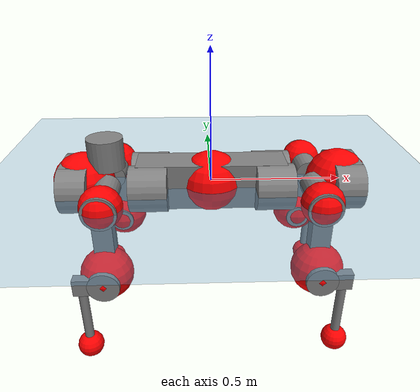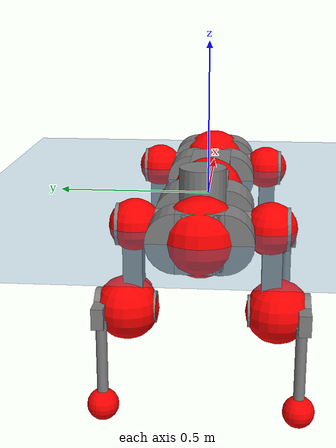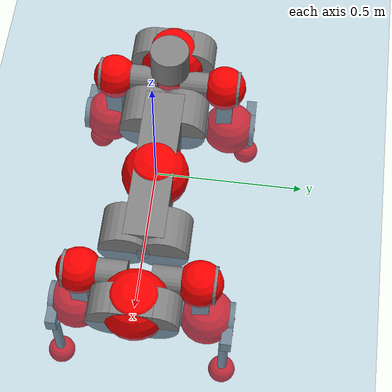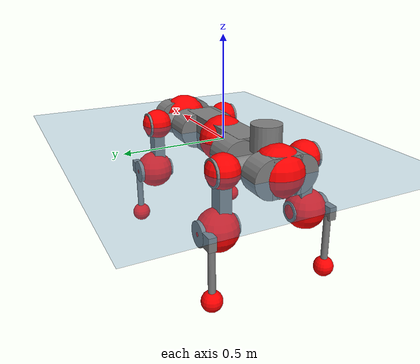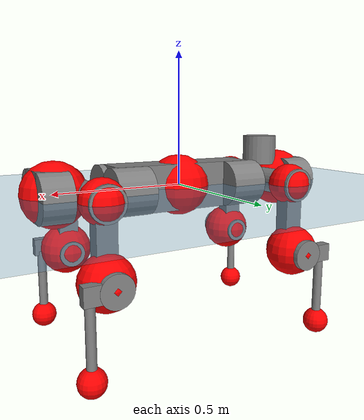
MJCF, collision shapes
<mujoco model="anymal_c">
  <compiler angle="radian" assetdir="assets" balanceinertia="true" inertiafromgeom="false"/>

  <option timestep="0.005" density="1.2" viscosity="2e-05"/>

  <size nkey="1"/>

  <visual>
    <quality shadowsize="8192"/>
    <map shadowclip="0.5"/>
  </visual>

  <default>
    <default class="/">
      <material specular="0" shininess="0.25"/>
      <geom contype="0" conaffinity="0" group="1" solref="-1000 -80"/>
      <site size="0.01 0.005 0.005" group="5"/>
      <general forcelimited="true" forcerange="-80 80" biastype="affine" gainprm="80" biasprm="0 -80 -2"/>
      <default class="anymal_c">
        <joint armature="0.01" damping="0.01" frictionloss="0.1"/>
        <default class="visual">
          <geom type="mesh" group="2"/>
          <default class="visual_zflip"/>
        </default>
        <default class="collision">
          <geom type="cylinder" group="3"/>
          <default class="foot">
            <geom size="0.03 0 0" type="sphere" condim="6" priority="1" friction="0.8 0.02 0.01" solimp="0.015 1 0.03"/>
          </default>
        </default>
      </default>
      <default class="reward_collision_sphere">
        <geom group="5" rgba="1 0 0 1"/>
      </default>
    </default>
  </default>

  <asset>
    <texture type="skybox" colorspace="auto" name="//unnamed_texture_0" builtin="gradient" rgb1="0.95 0.95 0.95" rgb2="0.95 0.95 0.95" width="100" height="600"/>
    <texture type="2d" colorspace="auto" name="texplane" builtin="checker" rgb1="0.345 0.575 0.748" rgb2="0.345 0.575 0.748" markrgb="1 1 1" width="512" height="512"/>
    <texture type="2d" colorspace="linear" name="base" file="base.png"/>
    <texture type="2d" colorspace="linear" name="top_shell" file="top_shell.png"/>
    <texture type="2d" colorspace="linear" name="bottom_shell" file="bottom_shell.png"/>
    <texture type="2d" colorspace="linear" name="remote" file="remote.png"/>
    <texture type="2d" colorspace="linear" name="hatch" file="hatch.png"/>
    <texture type="2d" colorspace="linear" name="handle" file="handle.png"/>
    <texture type="2d" colorspace="linear" name="face" file="face.png"/>
    <texture type="2d" colorspace="linear" name="battery" file="battery.png"/>
    <texture type="2d" colorspace="linear" name="lidar_cage" file="lidar_cage.png"/>
    <texture type="2d" colorspace="linear" name="depth_camera" file="depth_camera.png"/>
    <texture type="2d" colorspace="linear" name="wide_angle_camera" file="wide_angle_camera.png"/>
    <texture type="2d" colorspace="linear" name="lidar" file="lidar.png"/>
    <texture type="2d" colorspace="linear" name="drive" file="drive.png"/>
    <texture type="2d" colorspace="linear" name="hip_l" file="hip_l.png"/>
    <texture type="2d" colorspace="linear" name="shank_l" file="shank_l.png"/>
    <texture type="2d" colorspace="linear" name="foot" file="foot.png"/>
    <texture type="2d" colorspace="linear" name="thigh" file="thigh.png"/>
    <texture type="2d" colorspace="linear" name="shank_r" file="shank_r.png"/>
    <texture type="2d" colorspace="linear" name="hip_r" file="hip_r.png"/>
    <material name="MatPlane" class="/" texture="texplane" texuniform="true" texrepeat="2 2" specular="0.9" shininess="0.5"/>
    <material name="black_plastic" class="/" rgba="0.007 0.007 0.007 1"/>
    <material name="green" class="/" rgba="0.052 0.178 0.033 1"/>
    <material name="red" class="/" rgba="0.178 0.006 0.005 1"/>
    <material name="yellow" class="/" rgba="0.178 0.119 0.006 1"/>
    <material name="lwl" class="/" rgba="0.8 0.8 0.8 1"/>
    <material name="base" class="/" texture="base"/>
    <material name="top_shell" class="/" texture="top_shell"/>
    <material name="bottom_shell" class="/" texture="bottom_shell"/>
    <material name="hip_l" class="/" texture="hip_l"/>
    <material name="thigh" class="/" texture="thigh"/>
    <material name="shank_l" class="/" texture="shank_l"/>
    <material name="foot" class="/" texture="foot"/>
    <material name="hip_r" class="/" texture="hip_r"/>
    <material name="shank" class="/" texture="shank_r"/>
    <material name="hatch" class="/" texture="hatch"/>
    <material name="remote" class="/" texture="remote"/>
    <material name="handle" class="/" texture="handle"/>
    <material name="face" class="/" texture="face"/>
    <material name="depth_camera" class="/" texture="depth_camera"/>
    <material name="wide_angle_camera" class="/" texture="wide_angle_camera"/>
    <material name="battery" class="/" texture="battery"/>
    <material name="lidar_cage" class="/" texture="lidar_cage"/>
    <material name="lidar" class="/" texture="lidar"/>
    <material name="drive" class="/" texture="drive"/>
    <mesh name="base_0" class="/" file="base_0.obj"/>
    <mesh name="base_1" class="/" file="base_1.obj"/>
    <mesh name="base_2" class="/" file="base_2.obj"/>
    <mesh name="base_3" class="/" file="base_3.obj"/>
    <mesh name="base_4" class="/" file="base_4.obj"/>
    <mesh name="base_5" class="/" file="base_5.obj"/>
    <mesh name="top_shell" class="/" file="top_shell.obj"/>
    <mesh name="bottom_shell" class="/" file="bottom_shell.obj"/>
    <mesh name="remote" class="/" file="remote.obj"/>
    <mesh name="handle" class="/" file="handle.obj"/>
    <mesh name="face" class="/" file="face.obj"/>
    <mesh name="wide_angle_camera" class="/" file="wide_angle_camera.obj"/>
    <mesh name="depth_camera" class="/" file="depth_camera.obj"/>
    <mesh name="battery" class="/" file="battery.obj"/>
    <mesh name="lidar_cage" class="/" file="lidar_cage.obj"/>
    <mesh name="lidar" class="/" file="lidar.obj"/>
    <mesh name="drive" class="/" file="drive.obj"/>
    <mesh name="hip_l" class="/" file="hip_l.obj"/>
    <mesh name="thigh" class="/" file="thigh.obj"/>
    <mesh name="shank_l" class="/" file="shank_l.obj"/>
    <mesh name="foot" class="/" file="foot.obj"/>
    <mesh name="hip_r" class="/" file="hip_r.obj"/>
    <mesh name="hatch" class="/" file="hatch.obj"/>
    <mesh name="shank_r" class="/" file="shank_r.obj"/>
  </asset>

  <worldbody>
    <geom name="floor" class="/" size="100 100 0.125" type="plane" group="0" material="MatPlane"/>
    <light name="toplight_shadow" class="/" pos="0 0 5" dir="0.0990148 0.0990148 -0.990148" type="directional" ambient="0.04 0.04 0.04" diffuse="0.55 0.55 0.55" specular="0.12 0.12 0.12"/>
    <light name="toplight_fill" class="/" pos="0 0 5" dir="0.0990148 0.0990148 -0.990148" type="directional" castshadow="false" ambient="0.04 0.04 0.04" diffuse="0.3 0.3 0.3" specular="0.08 0.08 0.08"/>
    <body name="trunk" childclass="anymal_c" pos="0.00248336 -0.000683858 -0.000495961" quat="1 -0.000266525 -0.000429822 6.87058e-05">
      <inertial pos="0.00254279 0.000435481 0.0444953" quat="0.500164 0.500061 0.498967 0.500806" mass="17.4348" diaginertia="0.997128 0.439693 0.133885"/>
      <joint name="//unnamed_joint_0" type="free" armature="0" damping="0" frictionloss="0"/>
      <geom name="//unnamed_geom_1" class="visual" material="green" mesh="base_0"/>
      <geom name="//unnamed_geom_2" class="visual" material="yellow" mesh="base_1"/>
      <geom name="//unnamed_geom_3" class="visual" material="red" mesh="base_2"/>
      <geom name="//unnamed_geom_4" class="visual" material="black_plastic" mesh="base_3"/>
      <geom name="//unnamed_geom_5" class="visual" material="lwl" mesh="base_4"/>
      <geom name="//unnamed_geom_6" class="visual" material="base" mesh="base_5"/>
      <geom name="trunk_1" class="collision" size="0.28181 0.0680232 0.0874584" type="box"/>
      <geom name="trunk_2" class="collision" size="0.0874584 0.0704526" pos="0.235078 0.0648577 0" quat="0.707107 0 0.707107 0"/>
      <geom name="trunk_3" class="collision" size="0.0874584 0.0704526" pos="-0.235078 0.0648577 0" quat="0.707107 0 0.707107 0"/>
      <geom name="trunk_4" class="collision" size="0.0874584 0.0704526" pos="0.235078 -0.0648577 0" quat="0.707107 0 0.707107 0"/>
      <geom name="trunk_5" class="collision" size="0.0874584 0.0704526" pos="-0.235078 -0.0648577 0" quat="0.707107 0 0.707107 0"/>
      <geom name="//unnamed_geom_12" class="visual" material="top_shell" mesh="top_shell"/>
      <geom name="//unnamed_geom_13" class="visual" material="bottom_shell" mesh="bottom_shell"/>
      <geom name="//unnamed_geom_14" class="visual" material="remote" mesh="remote"/>
      <geom name="//unnamed_geom_15" class="visual" material="handle" mesh="handle"/>
      <geom name="//unnamed_geom_16" class="visual" pos="0.447998 0 0" quat="1 0 0 0" material="face" mesh="face"/>
      <geom name="trunk_6" class="collision" size="0.0534468 0.0680232 0.0874584" pos="0.507443 0 0" type="box"/>
      <geom name="//unnamed_geom_18" class="collision" size="0.0874584 0.0534468" pos="0.507443 0.0648577 0" quat="0.707107 0 0.707107 0"/>
      <geom name="//unnamed_geom_19" class="collision" size="0.0874584 0.0534468" pos="0.507443 -0.0648577 0" quat="0.707107 0 0.707107 0"/>
      <geom name="//unnamed_geom_20" class="visual" pos="0.498952 0 -0.0251974" quat="0.965926 0 0.258819 0" material="depth_camera" mesh="depth_camera"/>
      <geom name="//unnamed_geom_21" class="visual" pos="0.554459 0 0.0135916" material="wide_angle_camera" mesh="wide_angle_camera"/>
      <geom name="//unnamed_geom_22" class="visual_zflip" pos="-0.447998 0 0" quat="0 0 0 1" material="face" mesh="face"/>
      <geom name="trunk_7" class="collision" size="0.0534468 0.0680232 0.0874584" pos="-0.507443 0 0" quat="0 0 0 1" type="box"/>
      <geom name="//unnamed_geom_24" class="collision" size="0.0874584 0.0534468" pos="-0.507443 -0.0648577 0" quat="0 -0.707107 0 0.707107"/>
      <geom name="//unnamed_geom_25" class="collision" size="0.0874584 0.0534468" pos="-0.507443 0.0648577 0" quat="0 -0.707107 0 0.707107"/>
      <geom name="//unnamed_geom_26" class="visual" pos="-0.498952 0 -0.0251974" quat="0 -0.258819 0 0.965926" material="depth_camera" mesh="depth_camera"/>
      <geom name="//unnamed_geom_27" class="visual_zflip" pos="-0.554459 0 0.0135916" quat="0 0 0 1" material="wide_angle_camera" mesh="wide_angle_camera"/>
      <geom name="//unnamed_geom_28" class="visual" material="battery" mesh="battery"/>
      <geom name="//unnamed_geom_29" class="visual" pos="0 0.0688115 0.0276892" quat="0.683013 -0.183013 0.183013 0.683013" material="depth_camera" mesh="depth_camera"/>
      <geom name="//unnamed_geom_30" class="visual" pos="0 -0.0688115 0.0276892" quat="0.683013 0.183013 0.183013 -0.683013" material="depth_camera" mesh="depth_camera"/>
      <geom name="//unnamed_geom_31" class="visual" pos="-0.393417 0 0.0667324" quat="1 0 0 0" material="lidar_cage" mesh="lidar_cage"/>
      <geom name="trunk_8" class="collision" size="0.0680232 0.0583056" pos="-0.393417 0 0.121208"/>
      <geom name="//unnamed_geom_33" class="visual" pos="-0.393417 -6.06115e-05 0.129107" quat="0.707107 0 0 -0.707107" material="lidar" mesh="lidar"/>
      <geom name="//unnamed_geom_34" class="visual" pos="0.324137 0.0963534 3.21099e-10" quat="0.258819 0.965926 0 0" material="drive" mesh="drive"/>
      <geom name="//unnamed_geom_35" class="visual" pos="0.324137 -0.0963534 -3.21099e-10" quat="0.258819 -0.965926 0 0" material="drive" mesh="drive"/>
      <geom name="//unnamed_geom_36" class="visual" pos="-0.324137 0.0963534 -3.21099e-10" quat="0 0 0.965926 -0.258819" material="drive" mesh="drive"/>
      <geom name="//unnamed_geom_37" class="visual" pos="-0.324137 -0.0963534 3.21099e-10" quat="0 0 -0.965926 -0.258819" material="drive" mesh="drive"/>
      <geom name="//unnamed_geom_38" class="visual" pos="0.125375 0 0.0662785" quat="1 0 0 0" material="hatch" mesh="hatch"/>
      <geom name="//unnamed_geom_39" class="reward_collision_sphere" size="0.116611"/>
      <geom name="//unnamed_geom_40" class="reward_collision_sphere" size="0.116611" pos="0.486367 0 0"/>
      <geom name="//unnamed_geom_41" class="reward_collision_sphere" size="0.116611" pos="-0.486367 0 0"/>
      <site name="imu" pos="0.263575 0.00886061 0.0286742" size="0.0097176"/>
      <camera name="track" pos="0 -1.85308 0" quat="0.707107 0.707107 0 0" mode="trackcom"/>
      <camera name="ego_camera" pos="0.486367 0 -0.036317" quat="-0.5 -0.5 0.5 0.5"/>
      <body name="LF_HIP" pos="0.324047 0.0969267 -0.000176283" quat="0.259803 0.965662 -0.000148787 -0.000380534">
        <inertial pos="0.0586789 -0.013196 -0.00709064" quat="-0.128879 0.7101 -0.134239 0.679064" mass="2.56628" diaginertia="0.00868185 0.00327253 0.00201929"/>
        <joint name="LF_HAA" pos="0 0 0" axis="0.999892 0.00724789 0.0128213" range="-0.727391 0.487255" armature="0.00842445" damping="0.00600643" frictionloss="0.0969799"/>
        <geom name="//unnamed_geom_42" class="visual" pos="0 1.88888e-05 -3.10247e-06" quat="0.258819 -0.965926 0 0" material="hip_l" mesh="hip_l"/>
        <geom name="//unnamed_geom_43" class="visual" pos="0.0647409 -0.0764095 -0.0439773" quat="0.183013 -0.683013 0.683013 0.183013" material="drive" mesh="drive"/>
        <geom name="//unnamed_geom_44" class="collision" size="0.048588 0.0680232" pos="0.0647409 -0.0110812 -0.00626922" quat="-0.353553 -0.612372 0.612372 -0.353553"/>
        <body name="LF_THIGH" pos="0.0643948 -0.066424 -0.0389602" quat="0.183178 -0.682964 0.683011 0.183036">
          <inertial pos="0.0330689 0.000207381 -0.22565" quat="0.993177 -0.00438114 -0.0808463 0.0839272" mass="2.86894" diaginertia="0.0452856 0.0206652 0.00260165"/>
          <joint name="LF_HFE" pos="0 0 0" axis="0.999998 0.00067766 0.00196697" range="-3.15693 3.13847" armature="0.0108788" damping="0.00602944" frictionloss="0.0943831"/>
          <geom name="//unnamed_geom_45" class="visual" pos="0.00306951 4.83684e-06 0" quat="0.707107 0 0 -0.707107" material="thigh" mesh="thigh"/>
          <geom name="//unnamed_geom_46" class="collision" size="0.0631644 0.0388704" pos="0.0432326 0 0" quat="0.5 0.5 -0.5 -0.5"/>
          <geom name="//unnamed_geom_47" class="collision" size="0.036441 0.0291528 0.137323" pos="0.0324245 0 -0.128302" quat="0.707107 0 0 -0.707107" type="box"/>
          <geom name="//unnamed_geom_48" class="visual" pos="0.108406 0 -0.258758" quat="1 0 0 0" material="drive" mesh="drive"/>
          <geom name="//unnamed_geom_49" class="collision" size="0.048588 0.0680232" pos="0.0327487 0 -0.258758" quat="0.707107 0 0.707107 0"/>
          <geom name="//unnamed_geom_50" class="reward_collision_sphere" size="0.0777408" pos="0.0270204 0 0"/>
          <body name="LF_SHANK" pos="0.108531 -0.00300994 -0.257758" quat="1 0.00026138 -0.000512415 -0.000406399">
            <inertial pos="0.00581085 -0.0557844 -0.0734084" quat="0.99427 -0.103287 -0.0037797 -0.0273021" mass="0.550874" diaginertia="0.0147942 0.00635012 0.000677665"/>
            <joint name="LF_KFE" pos="0 0 0" axis="0.999991 0.00432569 0.000493966" range="-3.14638 3.14986" armature="0.00967697" damping="0" frictionloss="0.0985193"/>
            <geom name="//unnamed_geom_51" class="visual" pos="0.0010009 0.00533686 0" quat="0.707107 0 0 -0.707107" material="shank_l" mesh="shank_l"/>
            <geom name="LF_kfe_act" class="collision" size="0.0583056 0.0194352" pos="0.0216163 0 0" quat="0.5 0.5 -0.5 -0.5"/>
            <geom name="//unnamed_geom_53" class="collision" size="0.0558752 0.0327969 0.0184634" pos="0.0216163 -0.0532751 0" quat="0.5 0.5 -0.5 -0.5" type="box"/>
            <geom name="//unnamed_geom_54" class="visual" pos="0.0141044 -0.0797692 -0.306851" quat="0.382683 0 0 -0.92388" material="foot" mesh="foot"/>
            <geom name="LF_calf" class="collision" size="0.0170058 0.137263" pos="0.0141047 -0.0814891 -0.153426" quat="0.707107 0 0 -0.707107"/>
            <geom name="LF_foot" class="foot" size="0.0308594" pos="0.0141047 -0.0814891 -0.286423" quat="0.707107 0 0 -0.707107"/>
            <geom name="//unnamed_geom_57" class="reward_collision_sphere" size="0.097176" pos="-0.0540408 0 0"/>
            <geom name="//unnamed_geom_58" class="reward_collision_sphere" size="0.048588" pos="0.0141047 -0.0814891 -0.286423"/>
            <site name="LF_foot" class="foot" pos="0.0141047 -0.0814891 -0.286423" quat="0.707107 0 0 -0.707107" size="0.0097176"/>
          </body>
        </body>
      </body>
      <body name="RF_HIP" pos="0.321892 -0.0944009 -0.0013221" quat="0.258916 -0.9659 2.72544e-05 -0.000305901">
        <inertial pos="0.0640416 0.0134886 -0.0101788" quat="0.137854 0.676466 0.129552 0.711763" mass="2.62619" diaginertia="0.00886541 0.0034194 0.00209754"/>
        <joint name="RF_HAA" pos="0 0 0" axis="0.9999 -0.00948038 -0.0104706" range="-0.54554 0.719516" armature="0.00962756" damping="0.00970294" frictionloss="0.0862969"/>
        <geom name="//unnamed_geom_59" class="visual" pos="0 -1.88886e-05 -3.10246e-06" quat="0.258819 0.965926 0 0" material="hip_r" mesh="hip_r"/>
        <geom name="//unnamed_geom_60" class="visual" pos="0.0647409 0.0764095 -0.0439773" quat="0.183013 0.683013 0.683013 -0.183013" material="drive" mesh="drive"/>
        <geom name="//unnamed_geom_61" class="collision" size="0.048588 0.0680232" pos="0.0647409 0.0110812 -0.00626922" quat="-0.353553 0.612372 0.612372 0.353553"/>
        <body name="RF_THIGH" pos="0.0648758 0.0678719 -0.0378916" quat="0.182871 0.682894 0.683123 -0.183185">
          <inertial pos="0.0333056 0.00251266 -0.223748" quat="0.992704 -0.00593374 -0.0806717 0.0894143" mass="2.78296" diaginertia="0.0446381 0.0200418 0.00254695"/>
          <joint name="RF_HFE" pos="0 0 0" axis="1 -0.000781519 -2.34259e-05" stiffness="0.00177449" range="-3.14 3.14113" armature="0.0102894" damping="0" frictionloss="0.0935384"/>
          <geom name="//unnamed_geom_62" class="visual" pos="0.00306951 4.83684e-06 0" quat="0.707107 0 0 -0.707107" material="thigh" mesh="thigh"/>
          <geom name="//unnamed_geom_63" class="collision" size="0.0631644 0.0388704" pos="0.0432326 0 0" quat="0.5 0.5 0.5 0.5"/>
          <geom name="//unnamed_geom_64" class="collision" size="0.036441 0.0291528 0.137323" pos="0.0324245 0 -0.128302" quat="0.707107 0 0 0.707107" type="box"/>
          <geom name="//unnamed_geom_65" class="visual" pos="0.108406 0 -0.258758" quat="1 0 0 0" material="drive" mesh="drive"/>
          <geom name="//unnamed_geom_66" class="collision" size="0.048588 0.0680232" pos="0.0327487 0 -0.258758" quat="0.707107 0 0.707107 0"/>
          <geom name="//unnamed_geom_67" class="reward_collision_sphere" size="0.0777408" pos="0.0270204 0 0"/>
          <body name="RF_SHANK" pos="0.108788 -0.000894088 -0.256047" quat="0.999999 0.000125931 -0.00113622 -0.000724542">
            <inertial pos="0.00865143 0.0556387 -0.0707592" quat="0.99291 0.115361 -0.000417692 0.0286624" mass="0.527358" diaginertia="0.01509 0.00652537 0.000717173"/>
            <joint name="RF_KFE" pos="0 0 0" axis="0.999997 -0.00231039 -0.000216442" stiffness="0.000516568" range="-3.1877 3.12635" armature="0.00957982" damping="0.0204685" frictionloss="0.10899"/>
            <geom name="//unnamed_geom_68" class="visual" pos="0.0010009 -0.00533685 0" quat="0.707107 0 0 0.707107" material="shank" mesh="shank_r"/>
            <geom name="RF_kfe_act" class="collision" size="0.0583056 0.0194352" pos="0.0216163 0 0" quat="0.5 0.5 0.5 0.5"/>
            <geom name="//unnamed_geom_70" class="collision" size="0.0558752 0.0327969 0.0184634" pos="0.0216163 0.0532751 0" quat="0.5 0.5 0.5 0.5" type="box"/>
            <geom name="//unnamed_geom_71" class="visual" pos="0.0141049 0.0797692 -0.306851" quat="0.382683 0 0 0.92388" material="foot" mesh="foot"/>
            <geom name="RF_calf" class="collision" size="0.0170058 0.137263" pos="0.0141047 0.0814891 -0.153426" quat="0.707107 0 0 0.707107"/>
            <geom name="RF_foot" class="foot" size="0.0297571" pos="0.0141047 0.0814891 -0.286423" quat="0.707107 0 0 0.707107"/>
            <geom name="//unnamed_geom_74" class="reward_collision_sphere" size="0.097176" pos="-0.0540408 0 0"/>
            <geom name="//unnamed_geom_75" class="reward_collision_sphere" size="0.048588" pos="0.0141047 0.0814891 -0.286423"/>
            <site name="RF_foot" class="foot" pos="0.0141047 0.0814891 -0.286423" quat="0.707107 0 0 0.707107" size="0.0097176"/>
          </body>
        </body>
      </body>
      <body name="LH_HIP" pos="-0.32107 0.0944055 0.000931429" quat="-0.000379537 -0.000283676 0.965836 -0.259153">
        <inertial pos="0.0640352 0.0113556 -0.00782425" quat="0.139497 0.676114 0.138735 0.710045" mass="2.56196" diaginertia="0.00878646 0.0033807 0.0019778"/>
        <joint name="LH_HAA" pos="0 0 0" axis="0.999999 0.00105406 0.000662741" range="-0.467606 0.710363" armature="0.00969185" damping="0.00997485" frictionloss="0.101659"/>
        <geom name="//unnamed_geom_76" class="visual" pos="0 -1.88886e-05 -3.10246e-06" quat="-0.258819 -0.965926 0 0" material="hip_r" mesh="hip_r"/>
        <geom name="//unnamed_geom_77" class="visual" pos="0.0647409 0.0764095 -0.0439773" quat="0.183013 0.683013 0.683013 -0.183013" material="drive" mesh="drive"/>
        <geom name="//unnamed_geom_78" class="collision" size="0.048588 0.0680232" pos="0.0647409 0.0110812 -0.00626922" quat="-0.353553 0.612372 0.612372 0.353553"/>
        <body name="LH_THIGH" pos="0.0643177 0.0670589 -0.0382652" quat="0.182913 0.683068 0.682948 -0.183146">
          <inertial pos="0.0325034 0.00255888 -0.222289" quat="0.993591 0.000883295 -0.0741524 0.0853132" mass="2.84105" diaginertia="0.0447496 0.0209574 0.00254478"/>
          <joint name="LH_HFE" pos="0 0 0" axis="0.999932 -0.00868664 0.00780955" range="-3.11476 3.15986" armature="0.011017" damping="0.00471536" frictionloss="0.108218"/>
          <geom name="//unnamed_geom_79" class="visual" pos="0.00306951 4.83684e-06 0" quat="0.707107 0 0 -0.707107" material="thigh" mesh="thigh"/>
          <geom name="//unnamed_geom_80" class="collision" size="0.0631644 0.0388704" pos="0.0432326 0 0" quat="0.5 0.5 -0.5 -0.5"/>
          <geom name="//unnamed_geom_81" class="collision" size="0.036441 0.0291528 0.137323" pos="0.0324245 0 -0.128302" quat="0.707107 0 0 -0.707107" type="box"/>
          <geom name="//unnamed_geom_82" class="visual" pos="0.108406 0 -0.258758" quat="1 0 0 0" material="drive" mesh="drive"/>
          <geom name="//unnamed_geom_83" class="collision" size="0.048588 0.0680232" pos="0.0327487 0 -0.258758" quat="0.707107 0 0.707107 0"/>
          <geom name="//unnamed_geom_84" class="reward_collision_sphere" size="0.0777408" pos="0.0270204 0 0"/>
          <body name="LH_SHANK" pos="0.107872 0.00140695 -0.261792" quat="0.999999 -6.50094e-05 -0.00059407 -0.00131442">
            <inertial pos="0.00613808 0.056778 -0.0706011" quat="0.99285 0.116492 -0.00274444 0.0259063" mass="0.520443" diaginertia="0.0148793 0.00630274 0.00068994"/>
            <joint name="LH_KFE" pos="0 0 0" axis="0.999985 -0.0051884 0.00161956" range="-3.1606 3.11915" armature="0.00921339" damping="0.00765332" frictionloss="0.0876835"/>
            <geom name="//unnamed_geom_85" class="visual" pos="0.0010009 -0.00533685 0" quat="-0.707107 0 0 -0.707107" material="shank" mesh="shank_r"/>
            <geom name="LH_kfe_act" class="collision" size="0.0583056 0.0194352" pos="0.0216163 0 0" quat="0.5 0.5 -0.5 -0.5"/>
            <geom name="//unnamed_geom_87" class="collision" size="0.0558752 0.0327969 0.0184634" pos="0.0216163 0.0532751 0" quat="0.5 0.5 -0.5 -0.5" type="box"/>
            <geom name="//unnamed_geom_88" class="visual" pos="0.0141049 0.0797692 -0.306851" quat="-0.382683 0 0 -0.92388" material="foot" mesh="foot"/>
            <geom name="LH_calf" class="collision" size="0.0170058 0.137263" pos="0.0141047 0.0814891 -0.153426" quat="0.707107 0 0 -0.707107"/>
            <geom name="LH_foot" class="foot" size="0.0278966" pos="0.0141047 0.0814891 -0.286423" quat="0.707107 0 0 -0.707107"/>
            <geom name="//unnamed_geom_91" class="reward_collision_sphere" size="0.097176" pos="-0.0540408 0 0"/>
            <geom name="//unnamed_geom_92" class="reward_collision_sphere" size="0.048588" pos="0.0141047 0.0814891 -0.286423"/>
            <site name="LH_foot" class="foot" pos="0.0141047 0.0814891 -0.286423" quat="0.707107 0 0 -0.707107" size="0.0097176"/>
          </body>
        </body>
      </body>
      <body name="RH_HIP" pos="-0.326666 -0.0971955 0.000554863" quat="0.000458291 -2.6642e-07 -0.965931 -0.258799">
        <inertial pos="0.0629031 -0.0140619 -0.00771323" quat="-0.138091 0.703319 -0.132869 0.684557" mass="2.56901" diaginertia="0.00877845 0.00343641 0.00207189"/>
        <joint name="RH_HAA" pos="0 0 0" axis="0.999898 -0.0140654 -0.00265682" stiffness="0.00178364" range="-0.718806 0.473634" armature="0.0100494" damping="0.0104703" frictionloss="0.0977759"/>
        <geom name="//unnamed_geom_93" class="visual" pos="0 1.88888e-05 -3.10247e-06" quat="-0.258819 0.965926 0 0" material="hip_l" mesh="hip_l"/>
        <geom name="//unnamed_geom_94" class="visual" pos="0.0647409 -0.0764095 -0.0439773" quat="-0.183013 0.683013 -0.683013 -0.183013" material="drive" mesh="drive"/>
        <geom name="//unnamed_geom_95" class="collision" size="0.048588 0.0680232" pos="0.0647409 -0.0110812 -0.00626922" quat="0.353553 0.612372 -0.612372 0.353553"/>
        <body name="RH_THIGH" pos="0.0640761 -0.0664499 -0.0357972" quat="-0.183164 0.683256 -0.682746 -0.182949">
          <inertial pos="0.0324204 -0.000451313 -0.223879" quat="0.992083 -0.00889919 -0.0933475 0.083538" mass="2.84573" diaginertia="0.0442017 0.020913 0.00265926"/>
          <joint name="RH_HFE" pos="0 0 0" axis="0.999995 -0.00165835 -0.00251651" range="-3.14243 3.12935" armature="0.0107" damping="0" frictionloss="0.0969871"/>
          <geom name="//unnamed_geom_96" class="visual" pos="0.00306951 4.83684e-06 0" quat="0.707107 0 0 -0.707107" material="thigh" mesh="thigh"/>
          <geom name="//unnamed_geom_97" class="collision" size="0.0631644 0.0388704" pos="0.0432326 0 0" quat="0.5 0.5 0.5 0.5"/>
          <geom name="//unnamed_geom_98" class="collision" size="0.036441 0.0291528 0.137323" pos="0.0324245 0 -0.128302" quat="0.707107 0 0 0.707107" type="box"/>
          <geom name="//unnamed_geom_99" class="visual" pos="0.108406 0 -0.258758" quat="1 0 0 0" material="drive" mesh="drive"/>
          <geom name="//unnamed_geom_100" class="collision" size="0.048588 0.0680232" pos="0.0327487 0 -0.258758" quat="0.707107 0 0.707107 0"/>
          <geom name="//unnamed_geom_101" class="reward_collision_sphere" size="0.0777408" pos="0.0270204 0 0"/>
          <body name="RH_SHANK" pos="0.108608 -6.32362e-05 -0.258486" quat="1 5.78689e-05 1.97653e-05 -4.69789e-05">
            <inertial pos="0.00355373 -0.0593174 -0.0706582" quat="0.992756 -0.117591 0.000956326 -0.0246317" mass="0.553485" diaginertia="0.0147063 0.00647343 0.000689656"/>
            <joint name="RH_KFE" pos="0 0 0" axis="0.999981 0.00490721 -0.00383397" stiffness="0.00096623" range="-3.10749 3.18824" armature="0.00974333" damping="0.00407855" frictionloss="0.110101"/>
            <geom name="//unnamed_geom_102" class="visual" pos="0.0010009 0.00533686 0" quat="0.707107 0 0 -0.707107" material="shank_l" mesh="shank_l"/>
            <geom name="RH_kfe_act" class="collision" size="0.0583056 0.0194352" pos="0.0216163 0 0" quat="0.5 0.5 0.5 0.5"/>
            <geom name="//unnamed_geom_104" class="collision" size="0.0558752 0.0327969 0.0184634" pos="0.0216163 -0.0532751 0" quat="0.5 0.5 0.5 0.5" type="box"/>
            <geom name="//unnamed_geom_105" class="visual" pos="0.0141044 -0.0797692 -0.306851" quat="0.382683 0 0 -0.92388" material="foot" mesh="foot"/>
            <geom name="RH_calf" class="collision" size="0.0170058 0.137263" pos="0.0141047 -0.0814891 -0.153426" quat="0.707107 0 0 0.707107"/>
            <geom name="RH_foot" class="foot" size="0.0296294" pos="0.0141047 -0.0814891 -0.286423" quat="0.707107 0 0 0.707107"/>
            <geom name="//unnamed_geom_108" class="reward_collision_sphere" size="0.097176" pos="-0.0540408 0 0"/>
            <geom name="//unnamed_geom_109" class="reward_collision_sphere" size="0.048588" pos="0.0141047 -0.0814891 -0.286423"/>
            <site name="RH_foot" class="foot" pos="0.0141047 -0.0814891 -0.286423" quat="0.707107 0 0 0.707107" size="0.0097176"/>
          </body>
        </body>
      </body>
    </body>
  </worldbody>

  <contact>
    <pair class="/" geom1="floor" geom2="LF_foot" name="//unnamed_contact_0"/>
    <pair class="/" geom1="floor" geom2="RF_foot" name="//unnamed_contact_1"/>
    <pair class="/" geom1="floor" geom2="LH_foot" name="//unnamed_contact_2"/>
    <pair class="/" geom1="floor" geom2="RH_foot" name="//unnamed_contact_3"/>
  </contact>

  <actuator>
    <general name="LF_HAA" class="/" joint="LF_HAA" forcerange="-78.8394 78.8394" gainprm="78.8009" biasprm="0 -78.8009 -1.93283"/>
    <general name="LF_HFE" class="/" joint="LF_HFE" forcerange="-71.3961 71.3961" gainprm="78.8009" biasprm="0 -78.8009 -1.93283"/>
    <general name="LF_KFE" class="/" joint="LF_KFE" forcerange="-77.2011 77.2011" gainprm="78.8009" biasprm="0 -78.8009 -1.93283"/>
    <general name="RF_HAA" class="/" joint="RF_HAA" forcerange="-77.7116 77.7116" gainprm="78.8009" biasprm="0 -78.8009 -1.93283"/>
    <general name="RF_HFE" class="/" joint="RF_HFE" forcerange="-76.834 76.834" gainprm="78.8009" biasprm="0 -78.8009 -1.93283"/>
    <general name="RF_KFE" class="/" joint="RF_KFE" forcerange="-80.4285 80.4285" gainprm="78.8009" biasprm="0 -78.8009 -1.93283"/>
    <general name="LH_HAA" class="/" joint="LH_HAA" forcerange="-78.8308 78.8308" gainprm="78.8009" biasprm="0 -78.8009 -1.93283"/>
    <general name="LH_HFE" class="/" joint="LH_HFE" forcerange="-81.4408 81.4408" gainprm="78.8009" biasprm="0 -78.8009 -1.93283"/>
    <general name="LH_KFE" class="/" joint="LH_KFE" forcerange="-78.095 78.095" gainprm="78.8009" biasprm="0 -78.8009 -1.93283"/>
    <general name="RH_HAA" class="/" joint="RH_HAA" forcerange="-77.0782 77.0782" gainprm="78.8009" biasprm="0 -78.8009 -1.93283"/>
    <general name="RH_HFE" class="/" joint="RH_HFE" forcerange="-75.1065 75.1065" gainprm="78.8009" biasprm="0 -78.8009 -1.93283"/>
    <general name="RH_KFE" class="/" joint="RH_KFE" forcerange="-70.1293 70.1293" gainprm="78.8009" biasprm="0 -78.8009 -1.93283"/>
  </actuator>

  <sensor>
    <gyro site="imu" name="imu_angular_velocity"/>
    <velocimeter site="imu" name="imu_linear_velocity"/>
    <framelinvel objtype="site" objname="LF_foot" name="LF_foot_global_linear_velocity"/>
    <framelinvel objtype="site" objname="RF_foot" name="RF_foot_global_linear_velocity"/>
    <framelinvel objtype="site" objname="LH_foot" name="LH_foot_global_linear_velocity"/>
    <framelinvel objtype="site" objname="RH_foot" name="RH_foot_global_linear_velocity"/>
  </sensor>

  <keyframe>
    <key name="home" qpos="0 0 0.55 1 0 0 0 0 0.4 -0.8 0 -0.4 0.8 0 -0.4 0.8 0 0.4 -0.8"/>
  </keyframe>
</mujoco>
